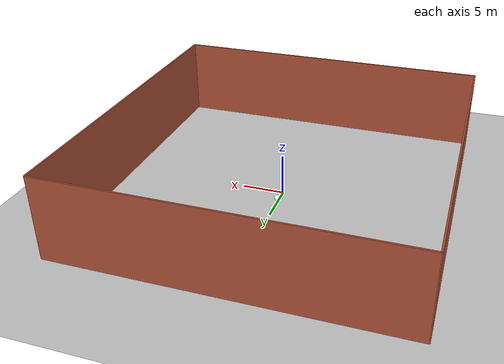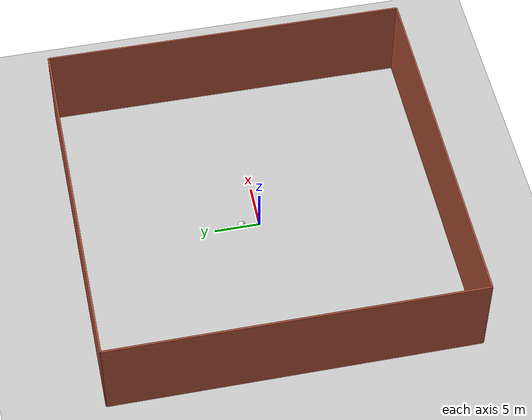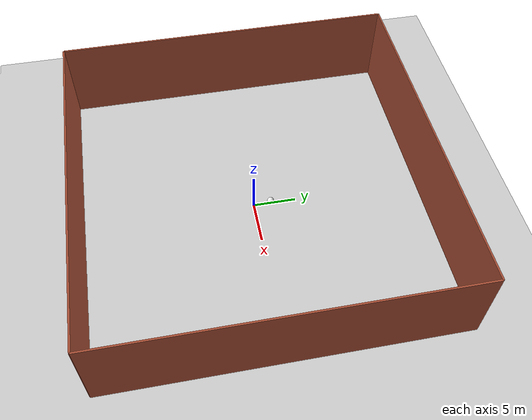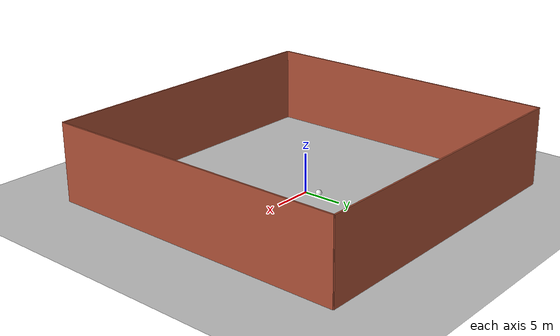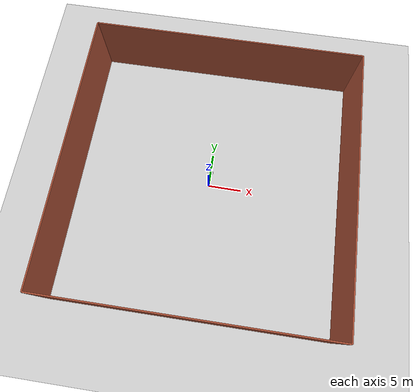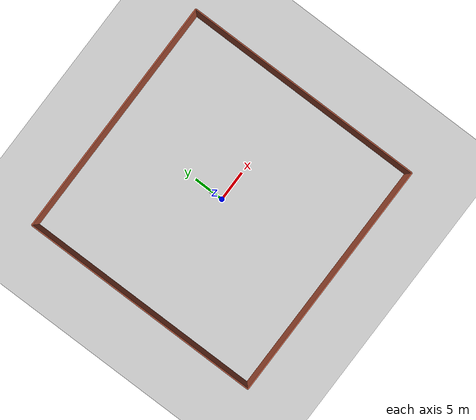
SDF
<sdf version='1.7'>
   <world name="my_world">
   <include>
      <pose>0 2 0.5 0 0 0</pose>
      <uri>model://ball</uri>
    </include>
    <include>
      <uri>model://sun</uri>
    </include>
    <include>
      <uri>model://ground_plane</uri>
    </include>
    <include>
      <uri>model://room</uri>
</include>

       </world>
</sdf>

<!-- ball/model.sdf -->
<sdf version='1.7'>
  <model name='ball'>
    <link name='link_0'>
      <inertial>
        <mass>1</mass>
        <inertia>
          <ixx>0.064</ixx>
          <ixy>0</ixy>
          <ixz>0</ixz>
          <iyy>0.064</iyy>
          <iyz>0</iyz>
          <izz>0.064</izz>
        </inertia>
        <pose>0 0 0 0 -0 0</pose>
      </inertial>
      <pose>-4e-06 -1e-06 -0 0 -0 0</pose>
      <gravity>1</gravity>
      <self_collide>0</self_collide>
      <kinematic>0</kinematic>
      <enable_wind>0</enable_wind>
      <visual name='visual'>
        <pose>0 0 0 0 -0 0</pose>
        <geometry>
          <sphere>
            <radius>0.4</radius>
          </sphere>
        </geometry>
        <material>
          <lighting>1</lighting>
          <script>
            <uri>file://media/materials/scripts/gazebo.material</uri>
            <name>Gazebo/White</name>
          </script>
          <shader type='pixel'>
            <normal_map>__default__</normal_map>
          </shader>
          <ambient>1 1 1 1</ambient>
          <diffuse>0.7 0.7 0.7 1</diffuse>
          <specular>0.01 0.01 0.01 1</specular>
          <emissive>0 0 0 1</emissive>
        </material>
        <transparency>0</transparency>
        <cast_shadows>0</cast_shadows>
      </visual>
      <collision name='collision'>
        <laser_retro>0</laser_retro>
        <max_contacts>10</max_contacts>
        <pose>0 0 0 0 -0 0</pose>
        <geometry>
          <sphere>
            <radius>0.4</radius>
          </sphere>
        </geometry>
        <surface>
          <friction>
            <ode>
              <mu>1</mu>
              <mu2>1</mu2>
              <fdir1>0 0 0</fdir1>
              <slip1>0</slip1>
              <slip2>0</slip2>
            </ode>
            <torsional>
              <coefficient>1</coefficient>
              <patch_radius>0</patch_radius>
              <surface_radius>0</surface_radius>
              <use_patch_radius>1</use_patch_radius>
              <ode>
                <slip>0</slip>
              </ode>
            </torsional>
          </friction>
          <bounce>
            <restitution_coefficient>0</restitution_coefficient>
            <threshold>1e+06</threshold>
          </bounce>
          <contact>
            <collide_without_contact>0</collide_without_contact>
            <collide_without_contact_bitmask>1</collide_without_contact_bitmask>
            <collide_bitmask>1</collide_bitmask>
            <ode>
              <soft_cfm>0</soft_cfm>
              <soft_erp>0.2</soft_erp>
              <kp>1e+13</kp>
              <kd>1</kd>
              <max_vel>0.01</max_vel>
              <min_depth>0</min_depth>
            </ode>
            <bullet>
              <split_impulse>1</split_impulse>
              <split_impulse_penetration_threshold>-0.01</split_impulse_penetration_threshold>
              <soft_cfm>0</soft_cfm>
              <soft_erp>0.2</soft_erp>
              <kp>1e+13</kp>
              <kd>1</kd>
            </bullet>
          </contact>
        </surface>
      </collision>
    </link>
    <static>0</static>
    <allow_auto_disable>1</allow_auto_disable>
  </model>
</sdf>

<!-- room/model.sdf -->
<sdf version='1.7'>
  <model name='room'>
    <pose>0 0 0 0 -0 0</pose>
    <link name='Wall_11'>
      <collision name='Wall_11_Collision'>
        <geometry>
          <box>
            <size>40 0.2 10</size>
          </box>
        </geometry>
        <pose>0 0 5 0 -0 0</pose>
      </collision>
      <visual name='Wall_11_Visual'>
        <pose>0 0 5 0 -0 0</pose>
        <geometry>
          <box>
            <size>40 0.2 10</size>
          </box>
        </geometry>
        <material>
          <script>
            <uri>file://media/materials/scripts/gazebo.material</uri>
            <name>Gazebo/Bricks</name>
          </script>
          <ambient>1 1 1 1</ambient>
        </material>
        <meta>
          <layer>0</layer>
        </meta>
      </visual>
      <pose>20 0 0 0 -0 -1.5708</pose>
    </link>
    <link name='Wall_5'>
      <collision name='Wall_5_Collision'>
        <geometry>
          <box>
            <size>40 0.2 10</size>
          </box>
        </geometry>
        <pose>0 0 5 0 -0 0</pose>
      </collision>
      <visual name='Wall_5_Visual'>
        <pose>0 0 5 0 -0 0</pose>
        <geometry>
          <box>
            <size>40 0.2 10</size>
          </box>
        </geometry>
        <material>
          <script>
            <uri>file://media/materials/scripts/gazebo.material</uri>
            <name>Gazebo/Bricks</name>
          </script>
          <ambient>1 1 1 1</ambient>
        </material>
        <meta>
          <layer>0</layer>
        </meta>
      </visual>
      <pose>0 -20 0 0 -0 0</pose>
    </link>
    <link name='Wall_7'>
      <collision name='Wall_7_Collision'>
        <geometry>
          <box>
            <size>40 0.2 10</size>
          </box>
        </geometry>
        <pose>0 0 5 0 -0 0</pose>
      </collision>
      <visual name='Wall_7_Visual'>
        <pose>0 0 5 0 -0 0</pose>
        <geometry>
          <box>
            <size>40 0.2 10</size>
          </box>
        </geometry>
        <material>
          <script>
            <uri>file://media/materials/scripts/gazebo.material</uri>
            <name>Gazebo/Bricks</name>
          </script>
          <ambient>1 1 1 1</ambient>
        </material>
        <meta>
          <layer>0</layer>
        </meta>
      </visual>
      <pose>0 20 0 0 -0 0</pose>
    </link>
    <link name='Wall_9'>
      <collision name='Wall_9_Collision'>
        <geometry>
          <box>
            <size>40 0.2 10</size>
          </box>
        </geometry>
        <pose>0 0 5 0 -0 0</pose>
      </collision>
      <visual name='Wall_9_Visual'>
        <pose>0 0 5 0 -0 0</pose>
        <geometry>
          <box>
            <size>40 0.2 10</size>
          </box>
        </geometry>
        <material>
          <script>
            <uri>file://media/materials/scripts/gazebo.material</uri>
            <name>Gazebo/Bricks</name>
          </script>
          <ambient>1 1 1 1</ambient>
        </material>
        <meta>
          <layer>0</layer>
        </meta>
      </visual>
      <pose>-20 0 0 0 -0 -1.5708</pose>
    </link>
    <static>1</static>
  </model>
</sdf>
